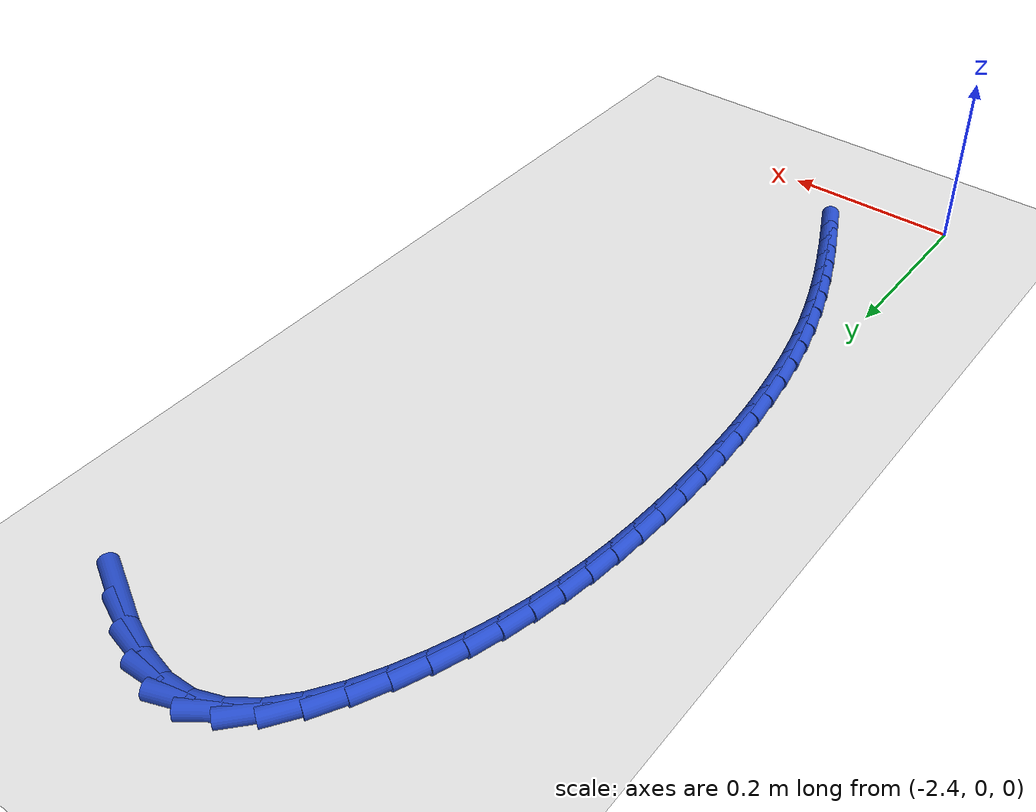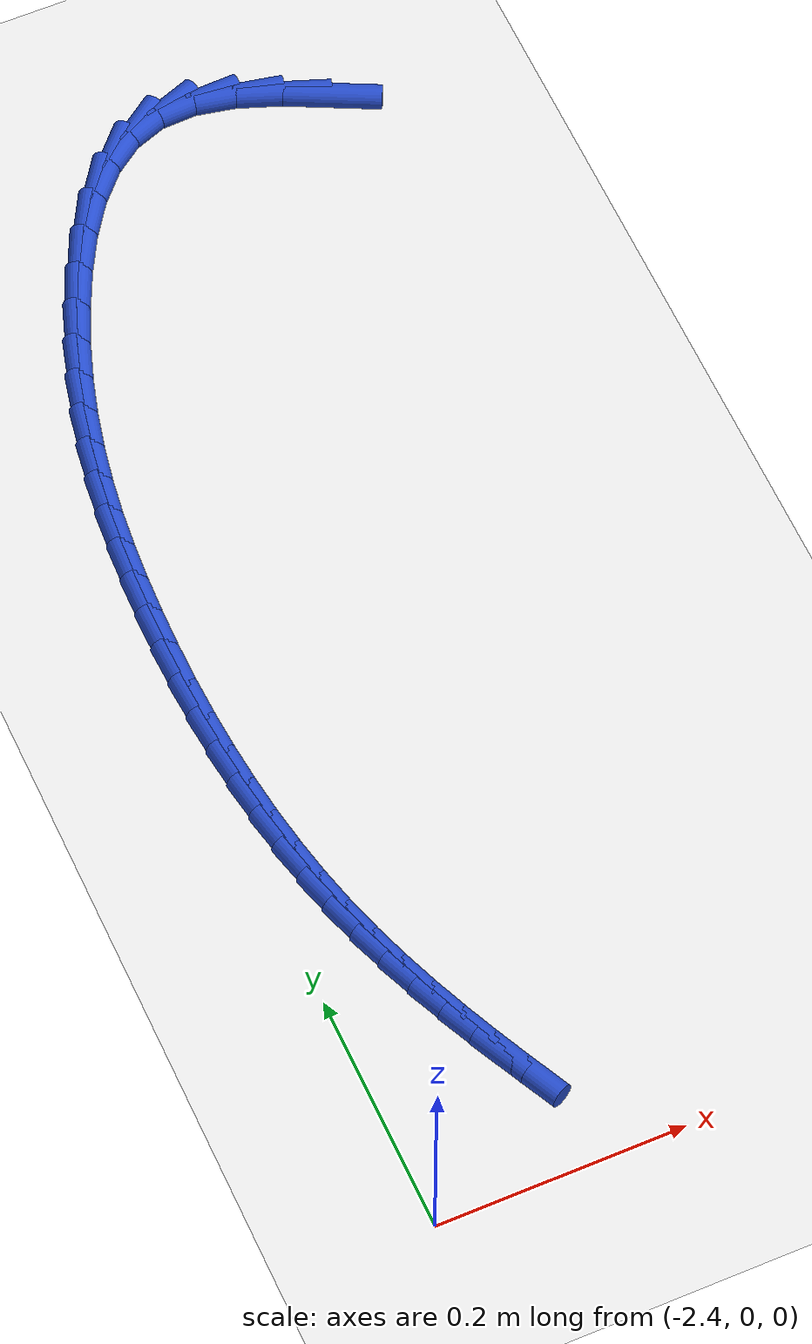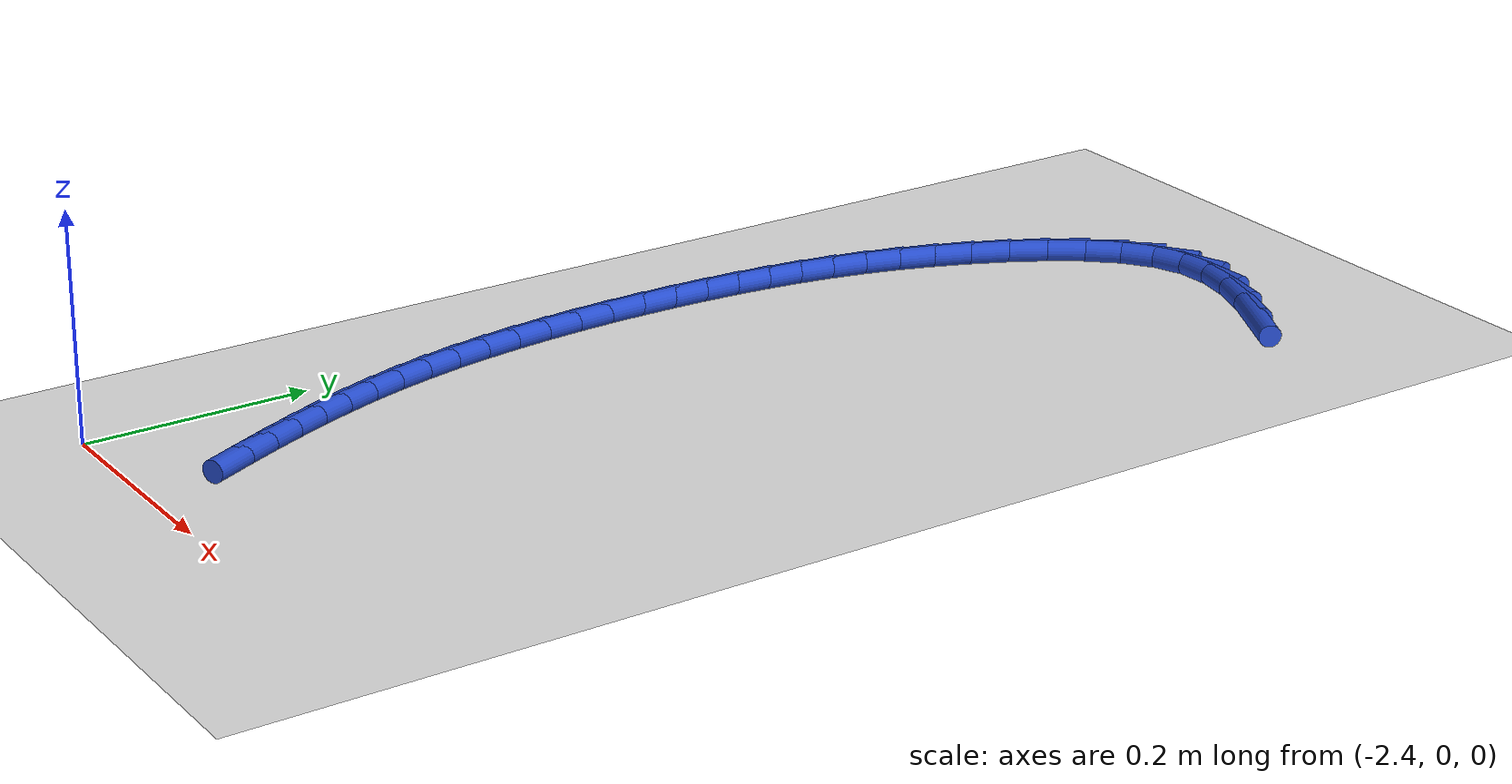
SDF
<sdf version="1.6">
 <world name="default">
  <model name="ground_plane">
   <static>1</static>
   <link name="link">
    <collision name="collision">
     <geometry><plane><normal>0 0 1</normal><size>100 100</size></plane></geometry>
     <surface><friction><ode><mu>100</mu><mu2>50</mu2></ode></friction></surface>
    </collision>
    <visual name="visual">
     <cast_shadows>0</cast_shadows>
     <geometry><plane><normal>0 0 1</normal><size>100 100</size></plane></geometry>
     <material>
      <script><uri>file://media/materials/scripts/gazebo.material</uri><name>Gazebo/WhiteGlow</name></script>
     </material>
    </visual>
   </link>
  </model>
  <model name="line">
   <link name="link_108">
    <pose>-2.064657314756822 0.9497616447167511 0.01 0 1.57 -0.4552936782302246</pose>
    <collision name="collision">
     <geometry><cylinder><radius>0.01</radius><length>0.08</length></cylinder></geometry>
    </collision>
    <visual name="visual">
     <material>
      <script><name>Gazebo/Blue</name><uri>file://media/materials/scripts/gazebo.material</uri></script>
     </material>
     <geometry><cylinder><radius>0.01</radius><length>0.08</length></cylinder></geometry>
    </visual>
   </link>
   <link name="link_109">
    <pose>-2.1009631078195476 0.9675369893839861 0.01 0 1.57 -0.35480946043421874</pose>
    <collision name="collision">
     <geometry><cylinder><radius>0.01</radius><length>0.08</length></cylinder></geometry>
    </collision>
    <visual name="visual">
     <material>
      <script><name>Gazebo/Blue</name><uri>file://media/materials/scripts/gazebo.material</uri></script>
     </material>
     <geometry><cylinder><radius>0.01</radius><length>0.08</length></cylinder></geometry>
    </visual>
   </link>
   <link name="link_110">
    <pose>-2.136468405111649 0.980691290991972 0.01 0 1.57 -0.19700555054795235</pose>
    <collision name="collision">
     <geometry><cylinder><radius>0.01</radius><length>0.08</length></cylinder></geometry>
    </collision>
    <visual name="visual">
     <material>
      <script><name>Gazebo/Blue</name><uri>file://media/materials/scripts/gazebo.material</uri></script>
     </material>
     <geometry><cylinder><radius>0.01</radius><length>0.08</length></cylinder></geometry>
    </visual>
   </link>
   <link name="link_111">
    <pose>-2.1703803555832883 0.98745992714326 0.01 0 1.57 0.04379778781572829</pose>
    <collision name="collision">
     <geometry><cylinder><radius>0.01</radius><length>0.08</length></cylinder></geometry>
    </collision>
    <visual name="visual">
     <material>
      <script><name>Gazebo/Blue</name><uri>file://media/materials/scripts/gazebo.material</uri></script>
     </material>
     <geometry><cylinder><radius>0.01</radius><length>0.08</length></cylinder></geometry>
    </visual>
   </link>
   <link name="link_112">
    <pose>-2.2019061107811 0.9860782852502659 0.01 0 1.57 0.357392487594989</pose>
    <collision name="collision">
     <geometry><cylinder><radius>0.01</radius><length>0.08</length></cylinder></geometry>
    </collision>
    <visual name="visual">
     <material>
      <script><name>Gazebo/Blue</name><uri>file://media/materials/scripts/gazebo.material</uri></script>
     </material>
     <geometry><cylinder><radius>0.01</radius><length>0.08</length></cylinder></geometry>
    </visual>
   </link>
   <link name="link_113">
    <pose>-2.2304240949057483 0.9754288480497498 0.01 0 1.57 0.6306745761264594</pose>
    <collision name="collision">
     <geometry><cylinder><radius>0.01</radius><length>0.08</length></cylinder></geometry>
    </collision>
    <visual name="visual">
     <material>
      <script><name>Gazebo/Blue</name><uri>file://media/materials/scripts/gazebo.material</uri></script>
     </material>
     <geometry><cylinder><radius>0.01</radius><length>0.08</length></cylinder></geometry>
    </visual>
   </link>
   <link name="link_114">
    <pose>-2.2559476379469436 0.9567928733182142 0.01 0 1.57 0.8295193991152926</pose>
    <collision name="collision">
     <geometry><cylinder><radius>0.01</radius><length>0.08</length></cylinder></geometry>
    </collision>
    <visual name="visual">
     <material>
      <script><name>Gazebo/Blue</name><uri>file://media/materials/scripts/gazebo.material</uri></script>
     </material>
     <geometry><cylinder><radius>0.01</radius><length>0.08</length></cylinder></geometry>
    </visual>
   </link>
   <link name="link_115">
    <pose>-2.2786371566972177 0.9320073361643589 0.01 0 1.57 0.9682534762373969</pose>
    <collision name="collision">
     <geometry><cylinder><radius>0.01</radius><length>0.08</length></cylinder></geometry>
    </collision>
    <visual name="visual">
     <material>
      <script><name>Gazebo/Blue</name><uri>file://media/materials/scripts/gazebo.material</uri></script>
     </material>
     <geometry><cylinder><radius>0.01</radius><length>0.08</length></cylinder></geometry>
    </visual>
   </link>
   <link name="link_116">
    <pose>-2.2986530679491026 0.9029092116968845 0.01 0 1.57 1.064623890288742</pose>
    <collision name="collision">
     <geometry><cylinder><radius>0.01</radius><length>0.08</length></cylinder></geometry>
    </collision>
    <visual name="visual">
     <material>
      <script><name>Gazebo/Blue</name><uri>file://media/materials/scripts/gazebo.material</uri></script>
     </material>
     <geometry><cylinder><radius>0.01</radius><length>0.08</length></cylinder></geometry>
    </visual>
   </link>
   <link name="link_117">
    <pose>-2.3161557884951325 0.8713354750244909 0.01 0 1.57 1.1315116135232621</pose>
    <collision name="collision">
     <geometry><cylinder><radius>0.01</radius><length>0.08</length></cylinder></geometry>
    </collision>
    <visual name="visual">
     <material>
      <script><name>Gazebo/Blue</name><uri>file://media/materials/scripts/gazebo.material</uri></script>
     </material>
     <geometry><cylinder><radius>0.01</radius><length>0.08</length></cylinder></geometry>
    </visual>
   </link>
   <link name="link_118">
    <pose>-2.331305814494621 0.8390949978244645 0.01 0 1.57 1.185460567116224</pose>
    <collision name="collision">
     <geometry><cylinder><radius>0.01</radius><length>0.08</length></cylinder></geometry>
    </collision>
    <visual name="visual">
     <material>
      <script><name>Gazebo/Blue</name><uri>file://media/materials/scripts/gazebo.material</uri></script>
     </material>
     <geometry><cylinder><radius>0.01</radius><length>0.08</length></cylinder></geometry>
    </visual>
   </link>
   <link name="link_119">
    <pose>-2.34426605355804 0.8071427674648909 0.01 0 1.57 1.2385641294294139</pose>
    <collision name="collision">
     <geometry><cylinder><radius>0.01</radius><length>0.08</length></cylinder></geometry>
    </collision>
    <visual name="visual">
     <material>
      <script><name>Gazebo/Blue</name><uri>file://media/materials/scripts/gazebo.material</uri></script>
     </material>
     <geometry><cylinder><radius>0.01</radius><length>0.08</length></cylinder></geometry>
    </visual>
   </link>
   <link name="link_120">
    <pose>-2.3552022037078917 0.7754456986141033 0.01 0 1.57 1.2904655028342589</pose>
    <collision name="collision">
     <geometry><cylinder><radius>0.01</radius><length>0.08</length></cylinder></geometry>
    </collision>
    <visual name="visual">
     <material>
      <script><name>Gazebo/Blue</name><uri>file://media/materials/scripts/gazebo.material</uri></script>
     </material>
     <geometry><cylinder><radius>0.01</radius><length>0.08</length></cylinder></geometry>
    </visual>
   </link>
   <link name="link_121">
    <pose>-2.3642801186321765 0.7439155854684097 0.01 0 1.57 1.3401512082795368</pose>
    <collision name="collision">
     <geometry><cylinder><radius>0.01</radius><length>0.08</length></cylinder></geometry>
    </collision>
    <visual name="visual">
     <material>
      <script><name>Gazebo/Blue</name><uri>file://media/materials/scripts/gazebo.material</uri></script>
     </material>
     <geometry><cylinder><radius>0.01</radius><length>0.08</length></cylinder></geometry>
    </visual>
   </link>
   <link name="link_122">
    <pose>-2.371665652018894 0.7124642222241185 0.01 0 1.57 1.3866737695914553</pose>
    <collision name="collision">
     <geometry><cylinder><radius>0.01</radius><length>0.08</length></cylinder></geometry>
    </collision>
    <visual name="visual">
     <material>
      <script><name>Gazebo/Blue</name><uri>file://media/materials/scripts/gazebo.material</uri></script>
     </material>
     <geometry><cylinder><radius>0.01</radius><length>0.08</length></cylinder></geometry>
    </visual>
   </link>
   <link name="link_123">
    <pose>-2.3775246575560454 0.6810034030775396 0.01 0 1.57 1.429210535834507</pose>
    <collision name="collision">
     <geometry><cylinder><radius>0.01</radius><length>0.08</length></cylinder></geometry>
    </collision>
    <visual name="visual">
     <material>
      <script><name>Gazebo/Blue</name><uri>file://media/materials/scripts/gazebo.material</uri></script>
     </material>
     <geometry><cylinder><radius>0.01</radius><length>0.08</length></cylinder></geometry>
    </visual>
   </link>
   <link name="link_124">
    <pose>-2.3820229889316287 0.6494449222249806 0.01 0 1.57 1.4671034629710156</pose>
    <collision name="collision">
     <geometry><cylinder><radius>0.01</radius><length>0.08</length></cylinder></geometry>
    </collision>
    <visual name="visual">
     <material>
      <script><name>Gazebo/Blue</name><uri>file://media/materials/scripts/gazebo.material</uri></script>
     </material>
     <geometry><cylinder><radius>0.01</radius><length>0.08</length></cylinder></geometry>
    </visual>
   </link>
   <link name="link_125">
    <pose>-2.385326499833647 0.6177005738627506 0.01 0 1.57 1.4998768563426301</pose>
    <collision name="collision">
     <geometry><cylinder><radius>0.01</radius><length>0.08</length></cylinder></geometry>
    </collision>
    <visual name="visual">
     <material>
      <script><name>Gazebo/Blue</name><uri>file://media/materials/scripts/gazebo.material</uri></script>
     </material>
     <geometry><cylinder><radius>0.01</radius><length>0.08</length></cylinder></geometry>
    </visual>
   </link>
   <link name="link_126">
    <pose>-2.3876010439500983 0.5856821521871578 0.01 0 1.57 1.5274026211104539</pose>
    <collision name="collision">
     <geometry><cylinder><radius>0.01</radius><length>0.08</length></cylinder></geometry>
    </collision>
    <visual name="visual">
     <material>
      <script><name>Gazebo/Blue</name><uri>file://media/materials/scripts/gazebo.material</uri></script>
     </material>
     <geometry><cylinder><radius>0.01</radius><length>0.08</length></cylinder></geometry>
    </visual>
   </link>
   <link name="link_127">
    <pose>-2.3890067979142273 0.5533071457233439 0.01 0 1.57 1.5528115376169636</pose>
    <collision name="collision">
     <geometry><cylinder><radius>0.01</radius><length>0.08</length></cylinder></geometry>
    </collision>
    <visual name="visual">
     <material>
      <script><name>Gazebo/Blue</name><uri>file://media/materials/scripts/gazebo.material</uri></script>
     </material>
     <geometry><cylinder><radius>0.01</radius><length>0.08</length></cylinder></geometry>
    </visual>
   </link>
   <link name="link_128">
    <pose>-2.389595051798759 0.5206022608757269 0.01 0 1.57 -1.5624097828050663</pose>
    <collision name="collision">
     <geometry><cylinder><radius>0.01</radius><length>0.08</length></cylinder></geometry>
    </collision>
    <visual name="visual">
     <material>
      <script><name>Gazebo/Blue</name><uri>file://media/materials/scripts/gazebo.material</uri></script>
     </material>
     <geometry><cylinder><radius>0.01</radius><length>0.08</length></cylinder></geometry>
    </visual>
   </link>
   <link name="link_129">
    <pose>-2.3893190466022065 0.48769255146551865 0.01 0 1.57 -1.5347201123452283</pose>
    <collision name="collision">
     <geometry><cylinder><radius>0.01</radius><length>0.08</length></cylinder></geometry>
    </collision>
    <visual name="visual">
     <material>
      <script><name>Gazebo/Blue</name><uri>file://media/materials/scripts/gazebo.material</uri></script>
     </material>
     <geometry><cylinder><radius>0.01</radius><length>0.08</length></cylinder></geometry>
    </visual>
   </link>
   <link name="link_130">
    <pose>-2.3881285212364087 0.45470658405671366 0.01 0 1.57 -1.5054456311069007</pose>
    <collision name="collision">
     <geometry><cylinder><radius>0.01</radius><length>0.08</length></cylinder></geometry>
    </collision>
    <visual name="visual">
     <material>
      <script><name>Gazebo/Blue</name><uri>file://media/materials/scripts/gazebo.material</uri></script>
     </material>
     <geometry><cylinder><radius>0.01</radius><length>0.08</length></cylinder></geometry>
    </visual>
   </link>
   <link name="link_131">
    <pose>-2.3859732146132044 0.4217729252133058 0.01 0 1.57 -1.4743006294303804</pose>
    <collision name="collision">
     <geometry><cylinder><radius>0.01</radius><length>0.08</length></cylinder></geometry>
    </collision>
    <visual name="visual">
     <material>
      <script><name>Gazebo/Blue</name><uri>file://media/materials/scripts/gazebo.material</uri></script>
     </material>
     <geometry><cylinder><radius>0.01</radius><length>0.08</length></cylinder></geometry>
    </visual>
   </link>
   <link name="link_132">
    <pose>-2.3828028656444324 0.3890201414992903 0.01 0 1.57 -1.4409752249508199</pose>
    <collision name="collision">
     <geometry><cylinder><radius>0.01</radius><length>0.08</length></cylinder></geometry>
    </collision>
    <visual name="visual">
     <material>
      <script><name>Gazebo/Blue</name><uri>file://media/materials/scripts/gazebo.material</uri></script>
     </material>
     <geometry><cylinder><radius>0.01</radius><length>0.08</length></cylinder></geometry>
    </visual>
   </link>
   <link name="link_133">
    <pose>-2.378567213241932 0.3565767994786613 0.01 0 1.57 -1.405131051392494</pose>
    <collision name="collision">
     <geometry><cylinder><radius>0.01</radius><length>0.08</length></cylinder></geometry>
    </collision>
    <visual name="visual">
     <material>
      <script><name>Gazebo/Blue</name><uri>file://media/materials/scripts/gazebo.material</uri></script>
     </material>
     <geometry><cylinder><radius>0.01</radius><length>0.08</length></cylinder></geometry>
    </visual>
   </link>
   <link name="link_134">
    <pose>-2.3732159963175428 0.3245714657154132 0.01 0 1.57 -1.36639796243219</pose>
    <collision name="collision">
     <geometry><cylinder><radius>0.01</radius><length>0.08</length></cylinder></geometry>
    </collision>
    <visual name="visual">
     <material>
      <script><name>Gazebo/Blue</name><uri>file://media/materials/scripts/gazebo.material</uri></script>
     </material>
     <geometry><cylinder><radius>0.01</radius><length>0.08</length></cylinder></geometry>
    </visual>
   </link>
   <link name="link_135">
    <pose>-2.3666989537831022 0.2931327067735397 0.01 0 1.57 -1.3244078531759444</pose>
    <collision name="collision">
     <geometry><cylinder><radius>0.01</radius><length>0.08</length></cylinder></geometry>
    </collision>
    <visual name="visual">
     <material>
      <script><name>Gazebo/Blue</name><uri>file://media/materials/scripts/gazebo.material</uri></script>
     </material>
     <geometry><cylinder><radius>0.01</radius><length>0.08</length></cylinder></geometry>
    </visual>
   </link>
   <link name="link_136">
    <pose>-2.3589667068450026 0.262387997003729 0.01 0 1.57 -1.2814653504142621</pose>
    <collision name="collision">
     <geometry><cylinder><radius>0.01</radius><length>0.08</length></cylinder></geometry>
    </collision>
    <visual name="visual">
     <material>
      <script><name>Gazebo/Blue</name><uri>file://media/materials/scripts/gazebo.material</uri></script>
     </material>
     <geometry><cylinder><radius>0.01</radius><length>0.08</length></cylinder></geometry>
    </visual>
   </link>
   <link name="link_137">
    <pose>-2.350035032541193 0.23238415281071326 0.01 0 1.57 -1.2422229712888524</pose>
    <collision name="collision">
     <geometry><cylinder><radius>0.01</radius><length>0.08</length></cylinder></geometry>
    </collision>
    <visual name="visual">
     <material>
      <script><name>Gazebo/Blue</name><uri>file://media/materials/scripts/gazebo.material</uri></script>
     </material>
     <geometry><cylinder><radius>0.01</radius><length>0.08</length></cylinder></geometry>
    </visual>
   </link>
   <link name="link_138">
    <pose>-2.34002843218392 0.20303339824685457 0.01 0 1.57 -1.2075466151685859</pose>
    <collision name="collision">
     <geometry><cylinder><radius>0.01</radius><length>0.08</length></cylinder></geometry>
    </collision>
    <visual name="visual">
     <material>
      <script><name>Gazebo/Blue</name><uri>file://media/materials/scripts/gazebo.material</uri></script>
     </material>
     <geometry><cylinder><radius>0.01</radius><length>0.08</length></cylinder></geometry>
    </visual>
   </link>
   <link name="link_139">
    <pose>-2.32908172578209 0.1742351836057055 0.01 0 1.57 -1.1777780477875777</pose>
    <collision name="collision">
     <geometry><cylinder><radius>0.01</radius><length>0.08</length></cylinder></geometry>
    </collision>
    <visual name="visual">
     <material>
      <script><name>Gazebo/Blue</name><uri>file://media/materials/scripts/gazebo.material</uri></script>
     </material>
     <geometry><cylinder><radius>0.01</radius><length>0.08</length></cylinder></geometry>
    </visual>
   </link>
   <link name="link_140">
    <pose>-2.317329733344605 0.1458889591808181 0.01 0 1.57 -1.153158815165891</pose>
    <collision name="collision">
     <geometry><cylinder><radius>0.01</radius><length>0.08</length></cylinder></geometry>
    </collision>
    <visual name="visual">
     <material>
      <script><name>Gazebo/Blue</name><uri>file://media/materials/scripts/gazebo.material</uri></script>
     </material>
     <geometry><cylinder><radius>0.01</radius><length>0.08</length></cylinder></geometry>
    </visual>
   </link>
   <link name="link_141">
    <pose>-2.3049072748803723 0.11789417526574573 0.01 0 1.57 -1.1338449871663534</pose>
    <collision name="collision">
     <geometry><cylinder><radius>0.01</radius><length>0.08</length></cylinder></geometry>
    </collision>
    <visual name="visual">
     <material>
      <script><name>Gazebo/Blue</name><uri>file://media/materials/scripts/gazebo.material</uri></script>
     </material>
     <geometry><cylinder><radius>0.01</radius><length>0.08</length></cylinder></geometry>
    </visual>
   </link>
   <link name="link_142">
    <pose>-2.2919491703982966 0.09015028215404046 0.01 0 1.57 -1.1199232481384116</pose>
    <collision name="collision">
     <geometry><cylinder><radius>0.01</radius><length>0.08</length></cylinder></geometry>
    </collision>
    <visual name="visual">
     <material>
      <script><name>Gazebo/Blue</name><uri>file://media/materials/scripts/gazebo.material</uri></script>
     </material>
     <geometry><cylinder><radius>0.01</radius><length>0.08</length></cylinder></geometry>
    </visual>
   </link>
  </model>
 </world>
</sdf>
